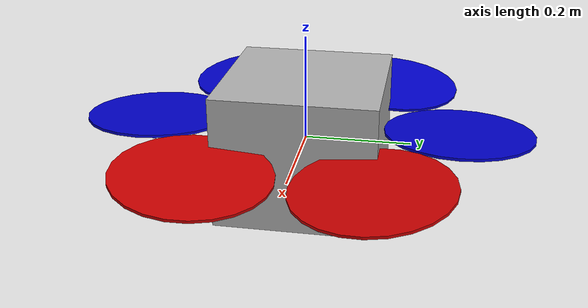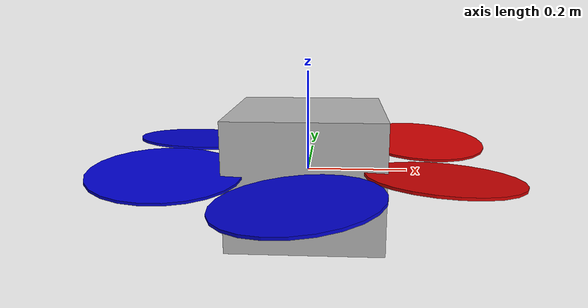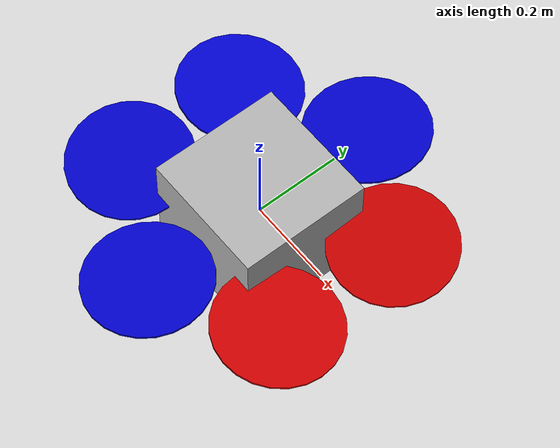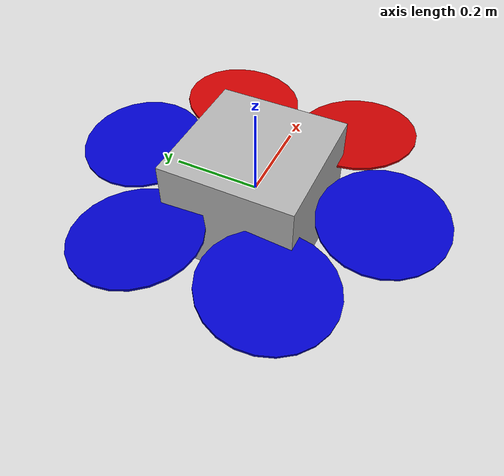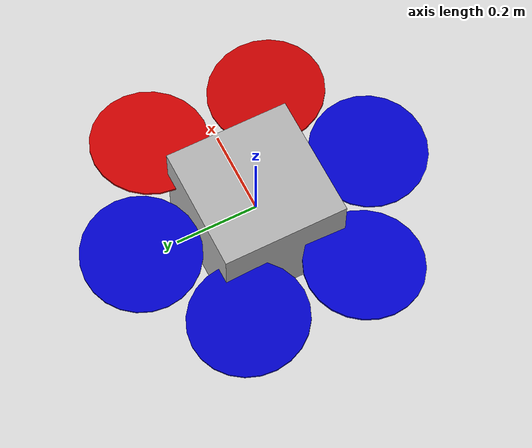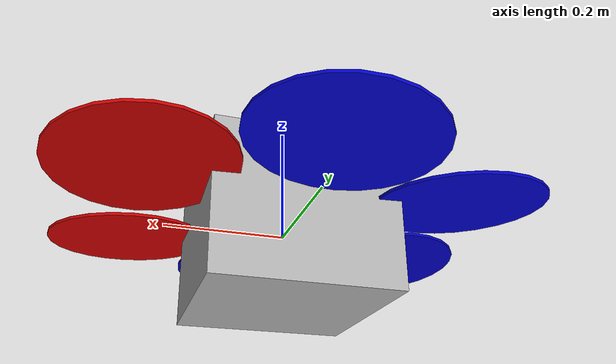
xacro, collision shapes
<?xml version="1.0"?>
<robot xmlns:xacro="http://www.ros.org/wiki/xacro" name="X4">

  <!-- Material definitions -->
  <material name="blue">
    <color rgba="0 0 0.8 1"/>
  </material>
  <material name="red">
    <color rgba="0.8 0 0 1"/>
  </material>
  <material name="grey">
    <color rgba="0.7 0.7 0.7 1"/>
  </material>

  <!-- Base Link -->
  <link name="base_link">
    <inertial>
      <origin xyz="0 0 0" rpy="0 0 0"/>
      <mass value="3.42"/>
      <inertia ixx="0.075" ixy="0" ixz="0" iyy="0.075" iyz="0" izz="0.148916"/>
    </inertial>

    <visual>
      <origin xyz="0 0 0" rpy="0 0 0"/>
      <geometry>
        <mesh filename="package:X4_GPS_LIDAR_RGBD/meshes/x4.dae" scale="1 1 1"/>
      </geometry>
      <material name="grey"/>
    </visual>

    <collision>
      <origin xyz="0 0 0" rpy="0 0 0"/>
      <geometry>
        <box size="0.3 0.3 0.25"/>
      </geometry>
    </collision>

    <!-- Additional visual elements -->
    <visual name="marker_visual_1">
      <origin xyz="-0.1 0 0.077" rpy="0 -0.1 0"/>
      <geometry>
        <mesh filename="package:X4_GPS_LIDAR_RGBD/meshes/led.dae" scale="1 1 1"/>
      </geometry>
    </visual>

    <visual name="marker_visual_2">
      <origin xyz="-0.09 0.059 0.059" rpy="-0.785397 0 0.2"/>
      <geometry>
        <mesh filename="package:X4_GPS_LIDAR_RGBD/meshes/led.dae" scale="1 1 1"/>
      </geometry>
    </visual>

    <visual name="marker_visual_3">
      <origin xyz="-0.09 -0.059 0.059" rpy="0.785397 0 -0.2"/>
      <geometry>
        <mesh filename="package:X4_GPS_LIDAR_RGBD/meshes/led.dae" scale="1 1 1"/>
      </geometry>
    </visual>

    <!-- Camera mount visuals -->
    <visual name="camera_mount_base_visual">
      <origin xyz="0.05 0 -0.030" rpy="0 0 0"/>
      <geometry>
        <box size="0.06 0.06 0.006"/>
      </geometry>
    </visual>

    <visual name="camera_mount_arm_visual">
      <origin xyz="0.08 0 -0.040" rpy="0 0 0"/>
      <geometry>
        <cylinder radius="0.005" length="0.08"/>
      </geometry>
    </visual>

    <visual name="camera_mount_arm2_visual">
      <origin xyz="0.08 0 -0.08" rpy="0 1.57 0"/>
      <geometry>
        <cylinder radius="0.01" length="0.025"/>
      </geometry>
    </visual>

    <visual name="camera_visual">
      <origin xyz="0.1 0 -0.08" rpy="0 0 0"/>
      <geometry>
        <box size="0.02 0.025 0.025"/>
      </geometry>
    </visual>
  </link>

  <!-- Rotor 0 -->
  <link name="rotor_0">
    <inertial>
      <origin xyz="0 0 0" rpy="0 0 0"/>
      <mass value="0.005"/>
      <inertia ixx="9.75e-07" ixy="0" ixz="0" iyy="8.13545e-05" iyz="0" izz="8.22545e-05"/>
    </inertial>

    <visual>
      <origin xyz="0 0 0" rpy="0 0 0"/>
      <geometry>
        <mesh filename="package:X4_GPS_LIDAR_RGBD/meshes/neo11_propeller_ccw.dae" scale="1 1 1"/>
      </geometry>
      <material name="red"/>
    </visual>

    <collision>
      <origin xyz="0 0 0" rpy="0 0 0"/>
      <geometry>
        <cylinder radius="0.1397" length="0.005"/>
      </geometry>
    </collision>
  </link>

  <joint name="rotor_0_joint" type="continuous">
    <parent link="base_link"/>
    <child link="rotor_0"/>
    <origin xyz="0.247 0.1506 0.028" rpy="0.087267 0 0.523599"/>
    <axis xyz="0.043578 -0.075479 0.996195"/>
  </joint>

  <!-- Rotor 1 -->
  <link name="rotor_1">
    <inertial>
      <origin xyz="0 0 0" rpy="0 0 0"/>
      <mass value="0.005"/>
      <inertia ixx="9.75e-07" ixy="0" ixz="0" iyy="8.13545e-05" iyz="0" izz="8.22545e-05"/>
    </inertial>

    <visual>
      <origin xyz="0 0 0" rpy="0 0 0"/>
      <geometry>
        <mesh filename="package:X4_GPS_LIDAR_RGBD/meshes/neo11_propeller_cw.dae" scale="1 1 1"/>
      </geometry>
      <material name="blue"/>
    </visual>

    <collision>
      <origin xyz="0 0 0" rpy="0 0 0"/>
      <geometry>
        <cylinder radius="0.1397" length="0.005"/>
      </geometry>
    </collision>
  </link>

  <joint name="rotor_1_joint" type="continuous">
    <parent link="base_link"/>
    <child link="rotor_1"/>
    <origin xyz="-0.00067 0.28929 0.028" rpy="0 -0.087267 0"/>
    <axis xyz="-0.087156 0 0.996195"/>
  </joint>

  <!-- Rotor 2 -->
  <link name="rotor_2">
    <inertial>
      <origin xyz="0 0 0" rpy="0 0 0"/>
      <mass value="0.005"/>
      <inertia ixx="9.75e-07" ixy="0" ixz="0" iyy="8.13545e-05" iyz="0" izz="8.22545e-05"/>
    </inertial>

    <visual>
      <origin xyz="0 0 0" rpy="0 0 0"/>
      <geometry>
        <mesh filename="package:X4_GPS_LIDAR_RGBD/meshes/neo11_propeller_ccw.dae" scale="1 1 1"/>
      </geometry>
      <material name="blue"/>
    </visual>

    <collision>
      <origin xyz="0 0 0" rpy="0 0 0"/>
      <geometry>
        <cylinder radius="0.1397" length="0.005"/>
      </geometry>
    </collision>
  </link>

  <joint name="rotor_2_joint" type="continuous">
    <parent link="base_link"/>
    <child link="rotor_2"/>
    <origin xyz="-0.2501 0.1454 0.028" rpy="0.087267 0 2.61799"/>
    <axis xyz="0.043578 0.075479 0.996195"/>
  </joint>

  <!-- Rotor 3 -->
  <link name="rotor_3">
    <inertial>
      <origin xyz="0 0 0" rpy="0 0 0"/>
      <mass value="0.005"/>
      <inertia ixx="9.75e-07" ixy="0" ixz="0" iyy="8.13545e-05" iyz="0" izz="8.22545e-05"/>
    </inertial>

    <visual>
      <origin xyz="0 0 0" rpy="0 0 0"/>
      <geometry>
        <mesh filename="package:X4_GPS_LIDAR_RGBD/meshes/neo11_propeller_cw.dae" scale="1 1 1"/>
      </geometry>
      <material name="blue"/>
    </visual>

    <collision>
      <origin xyz="0 0 0" rpy="0 0 0"/>
      <geometry>
        <cylinder radius="0.1397" length="0.005"/>
      </geometry>
    </collision>
  </link>

  <joint name="rotor_3_joint" type="continuous">
    <parent link="base_link"/>
    <child link="rotor_3"/>
    <origin xyz="-0.2501 -0.1454 0.028" rpy="-0.087267 0 -2.61799"/>
    <axis xyz="0.043578 -0.075479 0.996195"/>
  </joint>

  <!-- Rotor 4 -->
  <link name="rotor_4">
    <inertial>
      <origin xyz="0 0 0" rpy="0 0 0"/>
      <mass value="0.005"/>
      <inertia ixx="9.75e-07" ixy="0" ixz="0" iyy="8.13545e-05" iyz="0" izz="8.22545e-05"/>
    </inertial>

    <visual>
      <origin xyz="0 0 0" rpy="0 0 0"/>
      <geometry>
        <mesh filename="package:X4_GPS_LIDAR_RGBD/meshes/neo11_propeller_ccw.dae" scale="1 1 1"/>
      </geometry>
      <material name="blue"/>
    </visual>

    <collision>
      <origin xyz="0 0 0" rpy="0 0 0"/>
      <geometry>
        <cylinder radius="0.1397" length="0.005"/>
      </geometry>
    </collision>
  </link>

  <joint name="rotor_4_joint" type="continuous">
    <parent link="base_link"/>
    <child link="rotor_4"/>
    <origin xyz="-0.00067 -0.28929 0.028" rpy="0 0.087267 -3.14159"/>
    <axis xyz="-0.087156 0 0.996195"/>
  </joint>

  <!-- Rotor 5 -->
  <link name="rotor_5">
    <inertial>
      <origin xyz="0 0 0" rpy="0 0 0"/>
      <mass value="0.005"/>
      <inertia ixx="9.75e-07" ixy="0" ixz="0" iyy="8.13545e-05" iyz="0" izz="8.22545e-05"/>
    </inertial>

    <visual>
      <origin xyz="0 0 0" rpy="0 0 0"/>
      <geometry>
        <mesh filename="package:X4_GPS_LIDAR_RGBD/meshes/neo11_propeller_cw.dae" scale="1 1 1"/>
      </geometry>
      <material name="red"/>
    </visual>

    <collision>
      <origin xyz="0 0 0" rpy="0 0 0"/>
      <geometry>
        <cylinder radius="0.1397" length="0.005"/>
      </geometry>
    </collision>
  </link>

  <joint name="rotor_5_joint" type="continuous">
    <parent link="base_link"/>
    <child link="rotor_5"/>
    <origin xyz="0.247 -0.1506 0.028" rpy="-0.087267 0 -0.523599"/>
    <axis xyz="0.043578 0.075479 0.996195"/>
  </joint>

  <!-- Motor model (already in model.sdf) -->
<plugin filename="libignition-gazebo6-multicopter-motor-model-system.so"
        name="ignition::gazebo::systems::MulticopterMotorModel">
  <robotNamespace>X4</robotNamespace>
  <maxRotVelocity>1000.0
  </maxRotVelocity>
  <motorConstant>1.269e-05
  </motorConstant>
  <momentConstant>0.016754
  </momentConstant>
  <commandSubTopic>command/motor_speed
  </commandSubTopic>
  <rotorDragCoefficient>2.0673e-04
  </rotorDragCoefficient>
  <rotorDragCoefficient>0
  </rotorDragCoefficient>
  <rollingMomentCoefficient>0
  </rollingMomentCoefficient>
  <rotorVelocitySlowdownSim>2</rotorVelocitySlowdownSim>
</plugin>

<!-- Controller (velocity-based command topic) -->
<plugin filename="libignition-gazebo6-multicopter-control-system.so"
        name="ignition::gazebo::systems::MulticopterVelocityControl">
  <robotNamespace>X4</robotNamespace>
  <!-- topic that the plugin listens on for control commands -->
  <commandSubTopic>cmd_vel</commandSubTopic>
  <enableSubTopic>enable
  </enableSubTopic>
  <comLinkName>base_link
  </comLinkName>
  <velocityGain>6 6 10
  </velocityGain>
  <attitudeGain>4 4 2
  </attitudeGain>
  <angularRateGain>0.7 0.7 0.7
  </angularRateGain>
  <maximumLinearAcceleration>1 1 2
  </maximumLinearAcceleration>
  <maximumLinearVelocity>5 5 5
  </maximumLinearVelocity>
  <maximumAngularVelocity>3 3 3
  </maximumAngularVelocity>
  <linearVelocityNoiseMean>0 0 0
  </linearVelocityNoiseMean>
  <linearVelocityNoiseStdDev>0.1105 0.1261 0.0947
  </linearVelocityNoiseStdDev>
  <angularVelocityNoiseMean>0 0 0
  </angularVelocityNoiseMean>
  <!-- angularVelocityNoiseStdDev values based on ADIS16448's Rate Noise Density with a sample  -->
  <!-- time of 0.004 ms. -->
  <angularVelocityNoiseStdDev>0.004 0.004 0.004
  </angularVelocityNoiseStdDev>
  <!-- optionally configure link names / topics here -->
</plugin>

<!-- Odometry publisher -->
<plugin filename="libignition-gazebo6-odometry-publisher-system.so"
        name="ignition::gazebo::systems::OdometryPublisher">
  <robotNamespace>X4</robotNamespace>
  <odom_topic>/X4/odom</odom_topic>
  <robot_base_frame>base_link</robot_base_frame>
</plugin>

  <plugin
      filename="ignition-gazebo-imu-system"
      name="ignition::gazebo::systems::Imu">
    <robotNamespace>/X4</robotNamespace>
    <topicName>imu</topicName>
    <bodyName>base_link</bodyName>
    <updateRate>250</updateRate>
    <imuTopicName>imu</imuTopicName>
  </plugin>

  <plugin filename="libgazebo_ros_camera.so" name="camera_plugin">
    <robotNamespace>/X4</robotNamespace>
    <cameraName>camera_front</cameraName>
    <imageTopicName>camera/image_raw</imageTopicName>
    <cameraInfoTopicName>camera/camera_info</cameraInfoTopicName>
    <frameName>camera_front</frameName>
    <hackBaseline>0.07</hackBaseline>
    <updateRate>20</updateRate>
  </plugin>

  <!-- Sensor definitions for Gazebo -->
  <gazebo reference="base_link">
    <sensor type="imu" name="imu_sensor">
      <always_on>true</always_on>
      <update_rate>250</update_rate>
      <imu>
        <noise>
          <type>gaussian</type>
          <rate>
            <mean>0.0</mean>
            <stddev>0.009</stddev>
            <bias_mean>0.00075</bias_mean>
            <bias_stddev>0.005</bias_stddev>
          </rate>
          <accel>
            <mean>0.0</mean>
            <stddev>0.021</stddev>
            <bias_mean>0.05</bias_mean>
            <bias_stddev>0.0075</bias_stddev>
          </accel>
        </noise>
      </imu>
    </sensor>

    <sensor type="camera" name="camera_front">
      <pose>0.2 0 0 0 0.785 0</pose>
      <camera>
        <horizontal_fov>1.0472</horizontal_fov>
        <image>
          <width>320</width>
          <height>240</height>
          <format>R8G8B8</format>
        </image>
        <clip>
          <near>0.01</near>
          <far>300</far>
        </clip>
        <noise>
          <type>gaussian</type>
          <mean>0</mean>
          <stddev>0.007</stddev>
        </noise>
      </camera>
      <always_on>true</always_on>
      <update_rate>20</update_rate>

      <!-- Gazebo extensions for ROS plugins -->
      <!-- Lidar and cameras use the general Sensors plugin -->
      <plugin
          filename="libignition-gazebo-sensors-system.so"
          name="ignition::gazebo::systems::Sensors">
      </plugin>
    </sensor>
  </gazebo>

  <!-- ROS Control -->

  <!-- Transmission for rotors -->
  <transmission name="rotor_0_trans">
    <type>transmission_interface/SimpleTransmission</type>
    <joint name="rotor_0_joint">
      <hardwareInterface>EffortJointInterface</hardwareInterface>
    </joint>
    <actuator name="rotor_0_motor">
      <mechanicalReduction>1</mechanicalReduction>
    </actuator>
  </transmission>

  <!-- Repeat for other rotors 1-5 -->
  <transmission name="rotor_1_trans">
    <type>transmission_interface/SimpleTransmission</type>
    <joint name="rotor_1_joint">
      <hardwareInterface>EffortJointInterface</hardwareInterface>
    </joint>
    <actuator name="rotor_1_motor">
      <mechanicalReduction>1</mechanicalReduction>
    </actuator>
  </transmission>

  <transmission name="rotor_2_trans">
    <type>transmission_interface/SimpleTransmission</type>
    <joint name="rotor_2_joint">
      <hardwareInterface>EffortJointInterface</hardwareInterface>
    </joint>
    <actuator name="rotor_2_motor">
      <mechanicalReduction>1</mechanicalReduction>
    </actuator>
  </transmission>

  <transmission name="rotor_3_trans">
    <type>transmission_interface/SimpleTransmission</type>
    <joint name="rotor_3_joint">
      <hardwareInterface>EffortJointInterface</hardwareInterface>
    </joint>
    <actuator name="rotor_3_motor">
      <mechanicalReduction>1</mechanicalReduction>
    </actuator>
  </transmission>

  <transmission name="rotor_4_trans">
    <type>transmission_interface/SimpleTransmission</type>
    <joint name="rotor_4_joint">
      <hardwareInterface>EffortJointInterface</hardwareInterface>
    </joint>
    <actuator name="rotor_4_motor">
      <mechanicalReduction>1</mechanicalReduction>
    </actuator>
  </transmission>

  <transmission name="rotor_5_trans">
    <type>transmission_interface/SimpleTransmission</type>
    <joint name="rotor_5_joint">
      <hardwareInterface>EffortJointInterface</hardwareInterface>
    </joint>
    <actuator name="rotor_5_motor">
      <mechanicalReduction>1</mechanicalReduction>
    </actuator>
  </transmission>

</robot>
